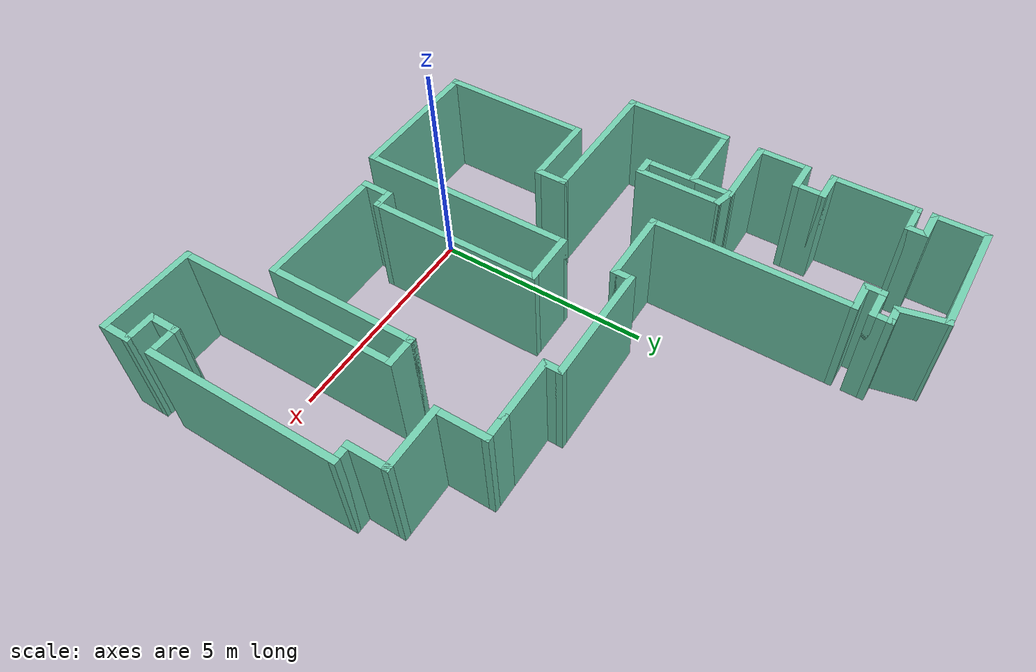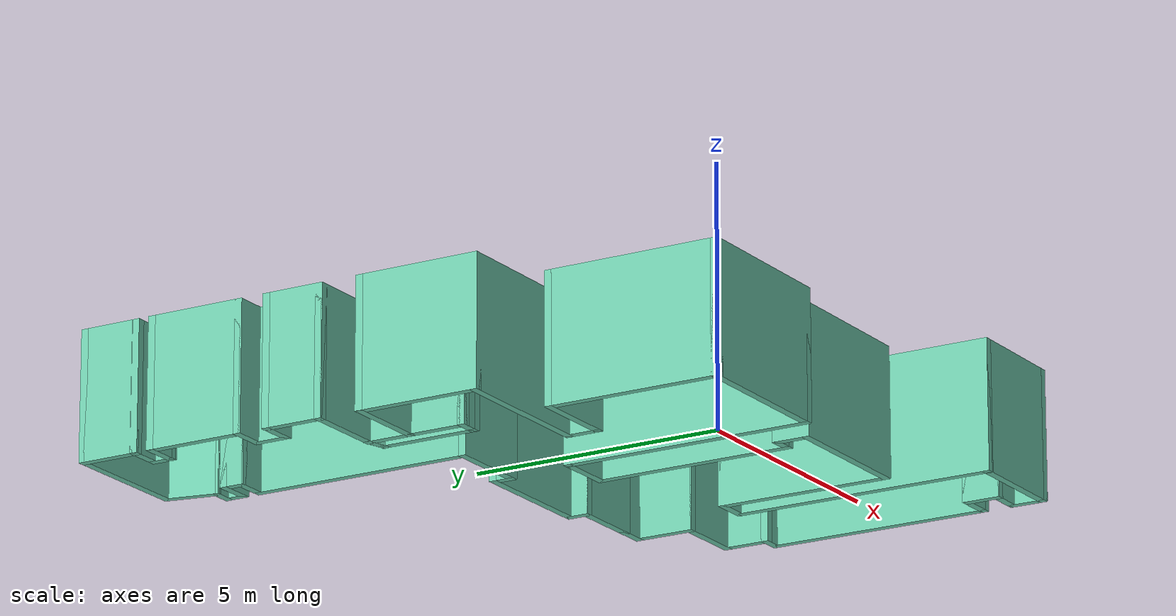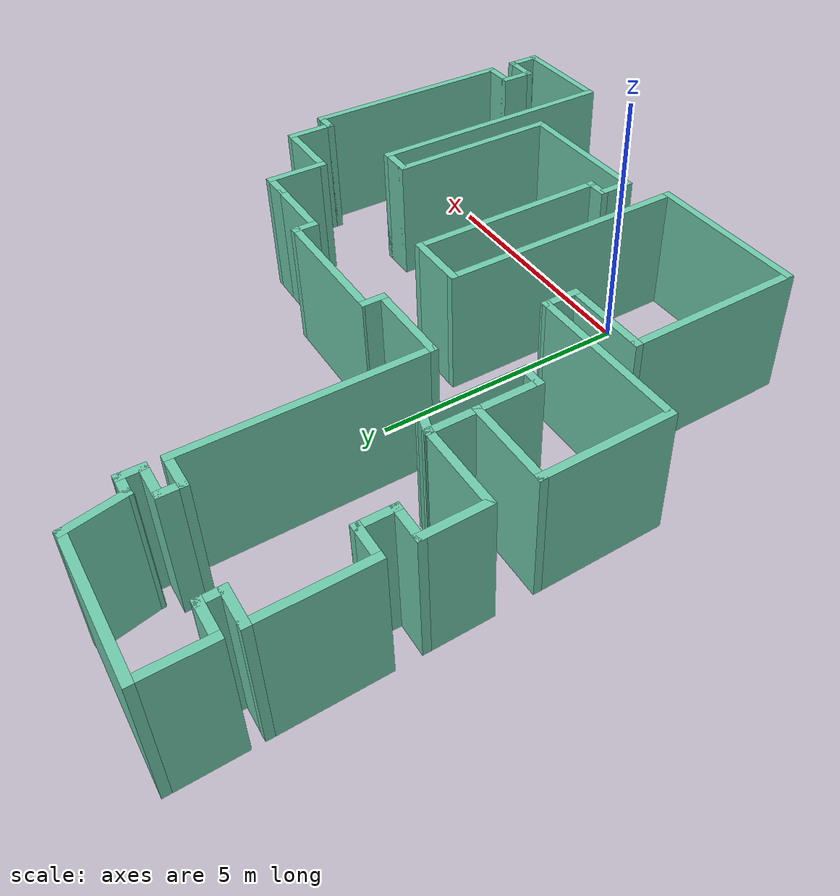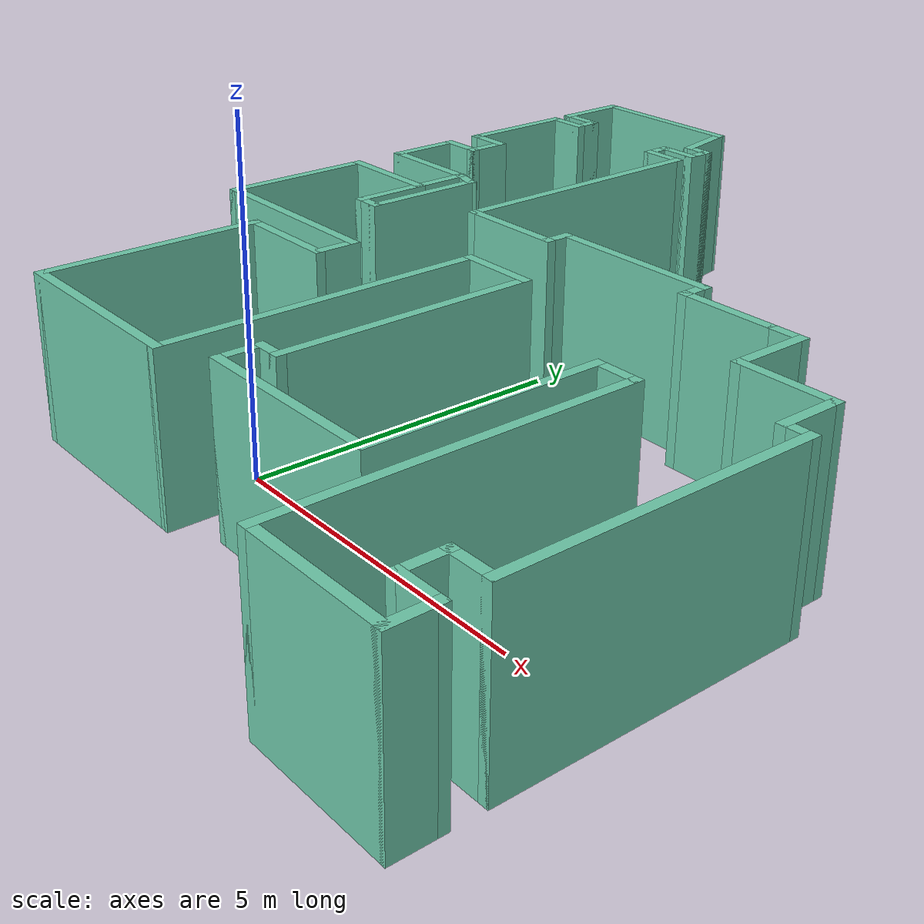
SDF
<?xml version='1.0'?>
<sdf version='1.6'>
  <model name='map_79'>
    <pose frame=''>1.24777 3.87322 0 0 -0 0</pose>
    <link name='Wall_0'>
      <collision name='Wall_0_Collision'>
        <geometry>
          <box>
            <size>2.75 0.15 2.5</size>
          </box>
        </geometry>
        <pose frame=''>0 0 1.25 0 -0 0</pose>
      </collision>
      <visual name='Wall_0_Visual'>
        <pose frame=''>0 0 1.25 0 -0 0</pose>
        <geometry>
          <box>
            <size>2.75 0.15 2.5</size>
          </box>
        </geometry>
        <material>
          <script>
            <uri>file://media/materials/scripts/gazebo.material</uri>
            <name>Gazebo/Grey</name>
          </script>
          <ambient>0.435294 0.796078 0.67451 1</ambient>
        </material>
        <meta>
          <layer>0</layer>
        </meta>
      </visual>
      <pose frame=''>-4.15 6.74308 0 0 -0 3.14159</pose>
    </link>
    <link name='Wall_1'>
      <collision name='Wall_1_Collision'>
        <geometry>
          <box>
            <size>1.25 0.15 2.5</size>
          </box>
        </geometry>
        <pose frame=''>0 0 1.25 0 -0 0</pose>
      </collision>
      <visual name='Wall_1_Visual'>
        <pose frame=''>0 0 1.25 0 -0 0</pose>
        <geometry>
          <box>
            <size>1.25 0.15 2.5</size>
          </box>
        </geometry>
        <material>
          <script>
            <uri>file://media/materials/scripts/gazebo.material</uri>
            <name>Gazebo/Grey</name>
          </script>
          <ambient>0.435294 0.796078 0.67451 1</ambient>
        </material>
        <meta>
          <layer>0</layer>
        </meta>
      </visual>
      <pose frame=''>-5.45 6.19308 0 0 -0 -1.5708</pose>
    </link>
    <link name='Wall_10'>
      <collision name='Wall_10_Collision'>
        <geometry>
          <box>
            <size>1.75 0.15 2.5</size>
          </box>
        </geometry>
        <pose frame=''>0 0 1.25 0 -0 0</pose>
      </collision>
      <visual name='Wall_10_Visual'>
        <pose frame=''>0 0 1.25 0 -0 0</pose>
        <geometry>
          <box>
            <size>1.75 0.15 2.5</size>
          </box>
        </geometry>
        <material>
          <script>
            <uri>file://media/materials/scripts/gazebo.material</uri>
            <name>Gazebo/Grey</name>
          </script>
          <ambient>0.435294 0.796078 0.67451 1</ambient>
        </material>
        <meta>
          <layer>0</layer>
        </meta>
      </visual>
      <pose frame=''>-4.65 1.74308 0 0 -0 0</pose>
    </link>
    <link name='Wall_11'>
      <collision name='Wall_11_Collision'>
        <geometry>
          <box>
            <size>1 0.15 2.5</size>
          </box>
        </geometry>
        <pose frame=''>0 0 1.25 0 -0 0</pose>
      </collision>
      <visual name='Wall_11_Visual'>
        <pose frame=''>0 0 1.25 0 -0 0</pose>
        <geometry>
          <box>
            <size>1 0.15 2.5</size>
          </box>
        </geometry>
        <material>
          <script>
            <uri>file://media/materials/scripts/gazebo.material</uri>
            <name>Gazebo/Grey</name>
          </script>
          <ambient>0.435294 0.796078 0.67451 1</ambient>
        </material>
        <meta>
          <layer>0</layer>
        </meta>
      </visual>
      <pose frame=''>-3.85 1.31808 0 0 -0 -1.5708</pose>
    </link>
    <link name='Wall_12'>
      <collision name='Wall_12_Collision'>
        <geometry>
          <box>
            <size>1.75 0.15 2.5</size>
          </box>
        </geometry>
        <pose frame=''>0 0 1.25 0 -0 0</pose>
      </collision>
      <visual name='Wall_12_Visual'>
        <pose frame=''>0 0 1.25 0 -0 0</pose>
        <geometry>
          <box>
            <size>1.75 0.15 2.5</size>
          </box>
        </geometry>
        <material>
          <script>
            <uri>file://media/materials/scripts/gazebo.material</uri>
            <name>Gazebo/Grey</name>
          </script>
          <ambient>0.435294 0.796078 0.67451 1</ambient>
        </material>
        <meta>
          <layer>0</layer>
        </meta>
      </visual>
      <pose frame=''>-4.65 0.893079 0 0 -0 3.14159</pose>
    </link>
    <link name='Wall_13'>
      <collision name='Wall_13_Collision'>
        <geometry>
          <box>
            <size>2.5 0.15 2.5</size>
          </box>
        </geometry>
        <pose frame=''>0 0 1.25 0 -0 0</pose>
      </collision>
      <visual name='Wall_13_Visual'>
        <pose frame=''>0 0 1.25 0 -0 0</pose>
        <geometry>
          <box>
            <size>2.5 0.15 2.5</size>
          </box>
        </geometry>
        <material>
          <script>
            <uri>file://media/materials/scripts/gazebo.material</uri>
            <name>Gazebo/Grey</name>
          </script>
          <ambient>0.435294 0.796078 0.67451 1</ambient>
        </material>
        <meta>
          <layer>0</layer>
        </meta>
      </visual>
      <pose frame=''>-5.45 -0.281921 0 0 -0 -1.5708</pose>
    </link>
    <link name='Wall_14'>
      <collision name='Wall_14_Collision'>
        <geometry>
          <box>
            <size>3.25 0.15 2.5</size>
          </box>
        </geometry>
        <pose frame=''>0 0 1.25 0 -0 0</pose>
      </collision>
      <visual name='Wall_14_Visual'>
        <pose frame=''>0 0 1.25 0 -0 0</pose>
        <geometry>
          <box>
            <size>3.25 0.15 2.5</size>
          </box>
        </geometry>
        <material>
          <script>
            <uri>file://media/materials/scripts/gazebo.material</uri>
            <name>Gazebo/Grey</name>
          </script>
          <ambient>0.435294 0.796078 0.67451 1</ambient>
        </material>
        <meta>
          <layer>0</layer>
        </meta>
      </visual>
      <pose frame=''>-3.9 -1.45692 0 0 -0 0</pose>
    </link>
    <link name='Wall_15'>
      <collision name='Wall_15_Collision'>
        <geometry>
          <box>
            <size>0.75 0.15 2.5</size>
          </box>
        </geometry>
        <pose frame=''>0 0 1.25 0 -0 0</pose>
      </collision>
      <visual name='Wall_15_Visual'>
        <pose frame=''>0 0 1.25 0 -0 0</pose>
        <geometry>
          <box>
            <size>0.75 0.15 2.5</size>
          </box>
        </geometry>
        <material>
          <script>
            <uri>file://media/materials/scripts/gazebo.material</uri>
            <name>Gazebo/Grey</name>
          </script>
          <ambient>0.435294 0.796078 0.67451 1</ambient>
        </material>
        <meta>
          <layer>0</layer>
        </meta>
      </visual>
      <pose frame=''>-2.35 -1.75692 0 0 -0 -1.5708</pose>
    </link>
    <link name='Wall_16'>
      <collision name='Wall_16_Collision'>
        <geometry>
          <box>
            <size>1.75 0.15 2.5</size>
          </box>
        </geometry>
        <pose frame=''>0 0 1.25 0 -0 0</pose>
      </collision>
      <visual name='Wall_16_Visual'>
        <pose frame=''>0 0 1.25 0 -0 0</pose>
        <geometry>
          <box>
            <size>1.75 0.15 2.5</size>
          </box>
        </geometry>
        <material>
          <script>
            <uri>file://media/materials/scripts/gazebo.material</uri>
            <name>Gazebo/Grey</name>
          </script>
          <ambient>0.435294 0.796078 0.67451 1</ambient>
        </material>
        <meta>
          <layer>0</layer>
        </meta>
      </visual>
      <pose frame=''>-3.15 -2.05692 0 0 -0 3.14159</pose>
    </link>
    <link name='Wall_17'>
      <collision name='Wall_17_Collision'>
        <geometry>
          <box>
            <size>3.5 0.15 2.5</size>
          </box>
        </geometry>
        <pose frame=''>0 0 1.25 0 -0 0</pose>
      </collision>
      <visual name='Wall_17_Visual'>
        <pose frame=''>0 0 1.25 0 -0 0</pose>
        <geometry>
          <box>
            <size>3.5 0.15 2.5</size>
          </box>
        </geometry>
        <material>
          <script>
            <uri>file://media/materials/scripts/gazebo.material</uri>
            <name>Gazebo/Grey</name>
          </script>
          <ambient>0.435294 0.796078 0.67451 1</ambient>
        </material>
        <meta>
          <layer>0</layer>
        </meta>
      </visual>
      <pose frame=''>-3.95 -3.73192 0 0 -0 -1.5708</pose>
    </link>
    <link name='Wall_18'>
      <collision name='Wall_18_Collision'>
        <geometry>
          <box>
            <size>3.25 0.15 2.5</size>
          </box>
        </geometry>
        <pose frame=''>0 0 1.25 0 -0 0</pose>
      </collision>
      <visual name='Wall_18_Visual'>
        <pose frame=''>0 0 1.25 0 -0 0</pose>
        <geometry>
          <box>
            <size>3.25 0.15 2.5</size>
          </box>
        </geometry>
        <material>
          <script>
            <uri>file://media/materials/scripts/gazebo.material</uri>
            <name>Gazebo/Grey</name>
          </script>
          <ambient>0.435294 0.796078 0.67451 1</ambient>
        </material>
        <meta>
          <layer>0</layer>
        </meta>
      </visual>
      <pose frame=''>-2.4 -5.40692 0 0 -0 0</pose>
    </link>
    <link name='Wall_19'>
      <collision name='Wall_19_Collision'>
        <geometry>
          <box>
            <size>5 0.15 2.5</size>
          </box>
        </geometry>
        <pose frame=''>0 0 1.25 0 -0 0</pose>
      </collision>
      <visual name='Wall_19_Visual'>
        <pose frame=''>0 0 1.25 0 -0 0</pose>
        <geometry>
          <box>
            <size>5 0.15 2.5</size>
          </box>
        </geometry>
        <material>
          <script>
            <uri>file://media/materials/scripts/gazebo.material</uri>
            <name>Gazebo/Grey</name>
          </script>
          <ambient>0.435294 0.796078 0.67451 1</ambient>
        </material>
        <meta>
          <layer>0</layer>
        </meta>
      </visual>
      <pose frame=''>-0.85 -2.98192 0 0 -0 1.5708</pose>
    </link>
    <link name='Wall_2'>
      <collision name='Wall_2_Collision'>
        <geometry>
          <box>
            <size>0.75 0.15 2.5</size>
          </box>
        </geometry>
        <pose frame=''>0 0 1.25 0 -0 0</pose>
      </collision>
      <visual name='Wall_2_Visual'>
        <pose frame=''>0 0 1.25 0 -0 0</pose>
        <geometry>
          <box>
            <size>0.75 0.15 2.5</size>
          </box>
        </geometry>
        <material>
          <script>
            <uri>file://media/materials/scripts/gazebo.material</uri>
            <name>Gazebo/Grey</name>
          </script>
          <ambient>0.435294 0.796078 0.67451 1</ambient>
        </material>
        <meta>
          <layer>0</layer>
        </meta>
      </visual>
      <pose frame=''>-5.15 5.64308 0 0 -0 0</pose>
    </link>
    <link name='Wall_20'>
      <collision name='Wall_20_Collision'>
        <geometry>
          <box>
            <size>1.25 0.15 2.5</size>
          </box>
        </geometry>
        <pose frame=''>0 0 1.25 0 -0 0</pose>
      </collision>
      <visual name='Wall_20_Visual'>
        <pose frame=''>0 0 1.25 0 -0 0</pose>
        <geometry>
          <box>
            <size>1.25 0.15 2.5</size>
          </box>
        </geometry>
        <material>
          <script>
            <uri>file://media/materials/scripts/gazebo.material</uri>
            <name>Gazebo/Grey</name>
          </script>
          <ambient>0.435294 0.796078 0.67451 1</ambient>
        </material>
        <meta>
          <layer>0</layer>
        </meta>
      </visual>
      <pose frame=''>-0.3 -0.556921 0 0 -0 0</pose>
    </link>
    <link name='Wall_21'>
      <collision name='Wall_21_Collision'>
        <geometry>
          <box>
            <size>4 0.15 2.5</size>
          </box>
        </geometry>
        <pose frame=''>0 0 1.25 0 -0 0</pose>
      </collision>
      <visual name='Wall_21_Visual'>
        <pose frame=''>0 0 1.25 0 -0 0</pose>
        <geometry>
          <box>
            <size>4 0.15 2.5</size>
          </box>
        </geometry>
        <material>
          <script>
            <uri>file://media/materials/scripts/gazebo.material</uri>
            <name>Gazebo/Grey</name>
          </script>
          <ambient>0.435294 0.796078 0.67451 1</ambient>
        </material>
        <meta>
          <layer>0</layer>
        </meta>
      </visual>
      <pose frame=''>0.25 -2.48192 0 0 -0 -1.5708</pose>
    </link>
    <link name='Wall_22'>
      <collision name='Wall_22_Collision'>
        <geometry>
          <box>
            <size>0.5 0.15 2.5</size>
          </box>
        </geometry>
        <pose frame=''>0 0 1.25 0 -0 0</pose>
      </collision>
      <visual name='Wall_22_Visual'>
        <pose frame=''>0 0 1.25 0 -0 0</pose>
        <geometry>
          <box>
            <size>0.5 0.15 2.5</size>
          </box>
        </geometry>
        <material>
          <script>
            <uri>file://media/materials/scripts/gazebo.material</uri>
            <name>Gazebo/Grey</name>
          </script>
          <ambient>0.435294 0.796078 0.67451 1</ambient>
        </material>
        <meta>
          <layer>0</layer>
        </meta>
      </visual>
      <pose frame=''>0.075 -4.40692 0 0 -0 3.14159</pose>
    </link>
    <link name='Wall_23'>
      <collision name='Wall_23_Collision'>
        <geometry>
          <box>
            <size>0.75 0.15 2.5</size>
          </box>
        </geometry>
        <pose frame=''>0 0 1.25 0 -0 0</pose>
      </collision>
      <visual name='Wall_23_Visual'>
        <pose frame=''>0 0 1.25 0 -0 0</pose>
        <geometry>
          <box>
            <size>0.75 0.15 2.5</size>
          </box>
        </geometry>
        <material>
          <script>
            <uri>file://media/materials/scripts/gazebo.material</uri>
            <name>Gazebo/Grey</name>
          </script>
          <ambient>0.435294 0.796078 0.67451 1</ambient>
        </material>
        <meta>
          <layer>0</layer>
        </meta>
      </visual>
      <pose frame=''>-0.1 -4.70692 0 0 -0 -1.5708</pose>
    </link>
    <link name='Wall_24'>
      <collision name='Wall_24_Collision'>
        <geometry>
          <box>
            <size>3 0.15 2.5</size>
          </box>
        </geometry>
        <pose frame=''>0 0 1.25 0 -0 0</pose>
      </collision>
      <visual name='Wall_24_Visual'>
        <pose frame=''>0 0 1.25 0 -0 0</pose>
        <geometry>
          <box>
            <size>3 0.15 2.5</size>
          </box>
        </geometry>
        <material>
          <script>
            <uri>file://media/materials/scripts/gazebo.material</uri>
            <name>Gazebo/Grey</name>
          </script>
          <ambient>0.435294 0.796078 0.67451 1</ambient>
        </material>
        <meta>
          <layer>0</layer>
        </meta>
      </visual>
      <pose frame=''>1.325 -5.00692 0 0 -0 0</pose>
    </link>
    <link name='Wall_25'>
      <collision name='Wall_25_Collision'>
        <geometry>
          <box>
            <size>3.5 0.15 2.5</size>
          </box>
        </geometry>
        <pose frame=''>0 0 1.25 0 -0 0</pose>
      </collision>
      <visual name='Wall_25_Visual'>
        <pose frame=''>0 0 1.25 0 -0 0</pose>
        <geometry>
          <box>
            <size>3.5 0.15 2.5</size>
          </box>
        </geometry>
        <material>
          <script>
            <uri>file://media/materials/scripts/gazebo.material</uri>
            <name>Gazebo/Grey</name>
          </script>
          <ambient>0.435294 0.796078 0.67451 1</ambient>
        </material>
        <meta>
          <layer>0</layer>
        </meta>
      </visual>
      <pose frame=''>2.75 -3.33192 0 0 -0 1.5708</pose>
    </link>
    <link name='Wall_26'>
      <collision name='Wall_26_Collision'>
        <geometry>
          <box>
            <size>0.75 0.15 2.5</size>
          </box>
        </geometry>
        <pose frame=''>0 0 1.25 0 -0 0</pose>
      </collision>
      <visual name='Wall_26_Visual'>
        <pose frame=''>0 0 1.25 0 -0 0</pose>
        <geometry>
          <box>
            <size>0.75 0.15 2.5</size>
          </box>
        </geometry>
        <material>
          <script>
            <uri>file://media/materials/scripts/gazebo.material</uri>
            <name>Gazebo/Grey</name>
          </script>
          <ambient>0.435294 0.796078 0.67451 1</ambient>
        </material>
        <meta>
          <layer>0</layer>
        </meta>
      </visual>
      <pose frame=''>3.05 -1.65692 0 0 -0 0</pose>
    </link>
    <link name='Wall_27'>
      <collision name='Wall_27_Collision'>
        <geometry>
          <box>
            <size>5.25 0.15 2.5</size>
          </box>
        </geometry>
        <pose frame=''>0 0 1.25 0 -0 0</pose>
      </collision>
      <visual name='Wall_27_Visual'>
        <pose frame=''>0 0 1.25 0 -0 0</pose>
        <geometry>
          <box>
            <size>5.25 0.15 2.5</size>
          </box>
        </geometry>
        <material>
          <script>
            <uri>file://media/materials/scripts/gazebo.material</uri>
            <name>Gazebo/Grey</name>
          </script>
          <ambient>0.435294 0.796078 0.67451 1</ambient>
        </material>
        <meta>
          <layer>0</layer>
        </meta>
      </visual>
      <pose frame=''>3.35 -4.20692 0 0 -0 -1.5708</pose>
    </link>
    <link name='Wall_3'>
      <collision name='Wall_3_Collision'>
        <geometry>
          <box>
            <size>0.5 0.15 2.5</size>
          </box>
        </geometry>
        <pose frame=''>0 0 1.25 0 -0 0</pose>
      </collision>
      <visual name='Wall_3_Visual'>
        <pose frame=''>0 0 1.25 0 -0 0</pose>
        <geometry>
          <box>
            <size>0.5 0.15 2.5</size>
          </box>
        </geometry>
        <material>
          <script>
            <uri>file://media/materials/scripts/gazebo.material</uri>
            <name>Gazebo/Grey</name>
          </script>
          <ambient>0.435294 0.796078 0.67451 1</ambient>
        </material>
        <meta>
          <layer>0</layer>
        </meta>
      </visual>
      <pose frame=''>-4.85 5.46808 0 0 -0 -1.5708</pose>
    </link>
    <link name='Wall_39'>
      <collision name='Wall_39_Collision'>
        <geometry>
          <box>
            <size>1.5 0.15 2.5</size>
          </box>
        </geometry>
        <pose frame=''>0 0 1.25 0 -0 0</pose>
      </collision>
      <visual name='Wall_39_Visual'>
        <pose frame=''>0 0 1.25 0 -0 0</pose>
        <geometry>
          <box>
            <size>1.5 0.15 2.5</size>
          </box>
        </geometry>
        <material>
          <script>
            <uri>file://media/materials/scripts/gazebo.material</uri>
            <name>Gazebo/Grey</name>
          </script>
          <ambient>0.435294 0.796078 0.67451 1</ambient>
        </material>
        <meta>
          <layer>0</layer>
        </meta>
      </visual>
      <pose frame=''>2.575 0.743079 0 0 -0 3.14159</pose>
    </link>
    <link name='Wall_4'>
      <collision name='Wall_4_Collision'>
        <geometry>
          <box>
            <size>0.75 0.15 2.5</size>
          </box>
        </geometry>
        <pose frame=''>0 0 1.25 0 -0 0</pose>
      </collision>
      <visual name='Wall_4_Visual'>
        <pose frame=''>0 0 1.25 0 -0 0</pose>
        <geometry>
          <box>
            <size>0.75 0.15 2.5</size>
          </box>
        </geometry>
        <material>
          <script>
            <uri>file://media/materials/scripts/gazebo.material</uri>
            <name>Gazebo/Grey</name>
          </script>
          <ambient>0.435294 0.796078 0.67451 1</ambient>
        </material>
        <meta>
          <layer>0</layer>
        </meta>
      </visual>
      <pose frame=''>-5.15 5.29308 0 0 -0 3.14159</pose>
    </link>
    <link name='Wall_40'>
      <collision name='Wall_40_Collision'>
        <geometry>
          <box>
            <size>0.5 0.15 2.5</size>
          </box>
        </geometry>
        <pose frame=''>0 0 1.25 0 -0 0</pose>
      </collision>
      <visual name='Wall_40_Visual'>
        <pose frame=''>0 0 1.25 0 -0 0</pose>
        <geometry>
          <box>
            <size>0.5 0.15 2.5</size>
          </box>
        </geometry>
        <material>
          <script>
            <uri>file://media/materials/scripts/gazebo.material</uri>
            <name>Gazebo/Grey</name>
          </script>
          <ambient>0.435294 0.796078 0.67451 1</ambient>
        </material>
        <meta>
          <layer>0</layer>
        </meta>
      </visual>
      <pose frame=''>1.9 0.918079 0 0 -0 1.5708</pose>
    </link>
    <link name='Wall_41'>
      <collision name='Wall_41_Collision'>
        <geometry>
          <box>
            <size>2.75 0.15 2.5</size>
          </box>
        </geometry>
        <pose frame=''>0 0 1.25 0 -0 0</pose>
      </collision>
      <visual name='Wall_41_Visual'>
        <pose frame=''>0 0 1.25 0 -0 0</pose>
        <geometry>
          <box>
            <size>2.75 0.15 2.5</size>
          </box>
        </geometry>
        <material>
          <script>
            <uri>file://media/materials/scripts/gazebo.material</uri>
            <name>Gazebo/Grey</name>
          </script>
          <ambient>0.435294 0.796078 0.67451 1</ambient>
        </material>
        <meta>
          <layer>0</layer>
        </meta>
      </visual>
      <pose frame=''>0.6 1.09308 0 0 -0 3.14159</pose>
    </link>
    <link name='Wall_49'>
      <collision name='Wall_49_Collision'>
        <geometry>
          <box>
            <size>2.25 0.15 2.5</size>
          </box>
        </geometry>
        <pose frame=''>0 0 1.25 0 -0 0</pose>
      </collision>
      <visual name='Wall_49_Visual'>
        <pose frame=''>0 0 1.25 0 -0 0</pose>
        <geometry>
          <box>
            <size>2.25 0.15 2.5</size>
          </box>
        </geometry>
        <material>
          <script>
            <uri>file://media/materials/scripts/gazebo.material</uri>
            <name>Gazebo/Grey</name>
          </script>
          <ambient>0.435294 0.796078 0.67451 1</ambient>
        </material>
        <meta>
          <layer>0</layer>
        </meta>
      </visual>
      <pose frame=''>4.4 -6.75692 0 0 -0 0</pose>
    </link>
    <link name='Wall_5'>
      <collision name='Wall_5_Collision'>
        <geometry>
          <box>
            <size>2 0.15 2.5</size>
          </box>
        </geometry>
        <pose frame=''>0 0 1.25 0 -0 0</pose>
      </collision>
      <visual name='Wall_5_Visual'>
        <pose frame=''>0 0 1.25 0 -0 0</pose>
        <geometry>
          <box>
            <size>2 0.15 2.5</size>
          </box>
        </geometry>
        <material>
          <script>
            <uri>file://media/materials/scripts/gazebo.material</uri>
            <name>Gazebo/Grey</name>
          </script>
          <ambient>0.435294 0.796078 0.67451 1</ambient>
        </material>
        <meta>
          <layer>0</layer>
        </meta>
      </visual>
      <pose frame=''>-5.45 4.36808 0 0 -0 -1.5708</pose>
    </link>
    <link name='Wall_50'>
      <collision name='Wall_50_Collision'>
        <geometry>
          <box>
            <size>0.75 0.15 2.5</size>
          </box>
        </geometry>
        <pose frame=''>0 0 1.25 0 -0 0</pose>
      </collision>
      <visual name='Wall_50_Visual'>
        <pose frame=''>0 0 1.25 0 -0 0</pose>
        <geometry>
          <box>
            <size>0.75 0.15 2.5</size>
          </box>
        </geometry>
        <material>
          <script>
            <uri>file://media/materials/scripts/gazebo.material</uri>
            <name>Gazebo/Grey</name>
          </script>
          <ambient>0.435294 0.796078 0.67451 1</ambient>
        </material>
        <meta>
          <layer>0</layer>
        </meta>
      </visual>
      <pose frame=''>5.45 -6.45692 0 0 -0 1.5708</pose>
    </link>
    <link name='Wall_51'>
      <collision name='Wall_51_Collision'>
        <geometry>
          <box>
            <size>0.75 0.15 2.5</size>
          </box>
        </geometry>
        <pose frame=''>0 0 1.25 0 -0 0</pose>
      </collision>
      <visual name='Wall_51_Visual'>
        <pose frame=''>0 0 1.25 0 -0 0</pose>
        <geometry>
          <box>
            <size>0.75 0.15 2.5</size>
          </box>
        </geometry>
        <material>
          <script>
            <uri>file://media/materials/scripts/gazebo.material</uri>
            <name>Gazebo/Grey</name>
          </script>
          <ambient>0.435294 0.796078 0.67451 1</ambient>
        </material>
        <meta>
          <layer>0</layer>
        </meta>
      </visual>
      <pose frame=''>5.15 -6.15692 0 0 -0 3.14159</pose>
    </link>
    <link name='Wall_52'>
      <collision name='Wall_52_Collision'>
        <geometry>
          <box>
            <size>0.75 0.15 2.5</size>
          </box>
        </geometry>
        <pose frame=''>0 0 1.25 0 -0 0</pose>
      </collision>
      <visual name='Wall_52_Visual'>
        <pose frame=''>0 0 1.25 0 -0 0</pose>
        <geometry>
          <box>
            <size>0.75 0.15 2.5</size>
          </box>
        </geometry>
        <material>
          <script>
            <uri>file://media/materials/scripts/gazebo.material</uri>
            <name>Gazebo/Grey</name>
          </script>
          <ambient>0.435294 0.796078 0.67451 1</ambient>
        </material>
        <meta>
          <layer>0</layer>
        </meta>
      </visual>
      <pose frame=''>4.85 -5.85692 0 0 -0 1.5708</pose>
    </link>
    <link name='Wall_53'>
      <collision name='Wall_53_Collision'>
        <geometry>
          <box>
            <size>0.75 0.15 2.5</size>
          </box>
        </geometry>
        <pose frame=''>0 0 1.25 0 -0 0</pose>
      </collision>
      <visual name='Wall_53_Visual'>
        <pose frame=''>0 0 1.25 0 -0 0</pose>
        <geometry>
          <box>
            <size>0.75 0.15 2.5</size>
          </box>
        </geometry>
        <material>
          <script>
            <uri>file://media/materials/scripts/gazebo.material</uri>
            <name>Gazebo/Grey</name>
          </script>
          <ambient>0.435294 0.796078 0.67451 1</ambient>
        </material>
        <meta>
          <layer>0</layer>
        </meta>
      </visual>
      <pose frame=''>5.15 -5.55692 0 0 -0 0</pose>
    </link>
    <link name='Wall_54'>
      <collision name='Wall_54_Collision'>
        <geometry>
          <box>
            <size>4.5 0.15 2.5</size>
          </box>
        </geometry>
        <pose frame=''>0 0 1.25 0 -0 0</pose>
      </collision>
      <visual name='Wall_54_Visual'>
        <pose frame=''>0 0 1.25 0 -0 0</pose>
        <geometry>
          <box>
            <size>4.5 0.15 2.5</size>
          </box>
        </geometry>
        <material>
          <script>
            <uri>file://media/materials/scripts/gazebo.material</uri>
            <name>Gazebo/Grey</name>
          </script>
          <ambient>0.435294 0.796078 0.67451 1</ambient>
        </material>
        <meta>
          <layer>0</layer>
        </meta>
      </visual>
      <pose frame=''>5.45 -3.38192 0 0 -0 1.5708</pose>
    </link>
    <link name='Wall_55'>
      <collision name='Wall_55_Collision'>
        <geometry>
          <box>
            <size>0.5 0.15 2.5</size>
          </box>
        </geometry>
        <pose frame=''>0 0 1.25 0 -0 0</pose>
      </collision>
      <visual name='Wall_55_Visual'>
        <pose frame=''>0 0 1.25 0 -0 0</pose>
        <geometry>
          <box>
            <size>0.5 0.15 2.5</size>
          </box>
        </geometry>
        <material>
          <script>
            <uri>file://media/materials/scripts/gazebo.material</uri>
            <name>Gazebo/Grey</name>
          </script>
          <ambient>0.435294 0.796078 0.67451 1</ambient>
        </material>
        <meta>
          <layer>0</layer>
        </meta>
      </visual>
      <pose frame=''>5.275 -1.20692 0 0 -0 3.14159</pose>
    </link>
    <link name='Wall_6'>
      <collision name='Wall_6_Collision'>
        <geometry>
          <box>
            <size>0.75 0.15 2.5</size>
          </box>
        </geometry>
        <pose frame=''>0 0 1.25 0 -0 0</pose>
      </collision>
      <visual name='Wall_6_Visual'>
        <pose frame=''>0 0 1.25 0 -0 0</pose>
        <geometry>
          <box>
            <size>0.75 0.15 2.5</size>
          </box>
        </geometry>
        <material>
          <script>
            <uri>file://media/materials/scripts/gazebo.material</uri>
            <name>Gazebo/Grey</name>
          </script>
          <ambient>0.435294 0.796078 0.67451 1</ambient>
        </material>
        <meta>
          <layer>0</layer>
        </meta>
      </visual>
      <pose frame=''>-5.15 3.44308 0 0 -0 0</pose>
    </link>
    <link name='Wall_63'>
      <collision name='Wall_63_Collision'>
        <geometry>
          <box>
            <size>0.5 0.15 2.5</size>
          </box>
        </geometry>
        <pose frame=''>0 0 1.25 0 -0 0</pose>
      </collision>
      <visual name='Wall_63_Visual'>
        <pose frame=''>0 0 1.25 0 -0 0</pose>
        <geometry>
          <box>
            <size>0.5 0.15 2.5</size>
          </box>
        </geometry>
        <material>
          <script>
            <uri>file://media/materials/scripts/gazebo.material</uri>
            <name>Gazebo/Grey</name>
          </script>
          <ambient>0.435294 0.796078 0.67451 1</ambient>
        </material>
        <meta>
          <layer>0</layer>
        </meta>
      </visual>
      <pose frame=''>-0.7 0.918079 0 0 -0 -1.5708</pose>
    </link>
    <link name='Wall_64'>
      <collision name='Wall_64_Collision'>
        <geometry>
          <box>
            <size>1.75 0.15 2.5</size>
          </box>
        </geometry>
        <pose frame=''>0 0 1.25 0 -0 0</pose>
      </collision>
      <visual name='Wall_64_Visual'>
        <pose frame=''>0 0 1.25 0 -0 0</pose>
        <geometry>
          <box>
            <size>1.75 0.15 2.5</size>
          </box>
        </geometry>
        <material>
          <script>
            <uri>file://media/materials/scripts/gazebo.material</uri>
            <name>Gazebo/Grey</name>
          </script>
          <ambient>0.435294 0.796078 0.67451 1</ambient>
        </material>
        <meta>
          <layer>0</layer>
        </meta>
      </visual>
      <pose frame=''>-1.5 0.743079 0 0 -0 3.14159</pose>
    </link>
    <link name='Wall_65'>
      <collision name='Wall_65_Collision'>
        <geometry>
          <box>
            <size>4.5 0.15 2.5</size>
          </box>
        </geometry>
        <pose frame=''>0 0 1.25 0 -0 0</pose>
      </collision>
      <visual name='Wall_65_Visual'>
        <pose frame=''>0 0 1.25 0 -0 0</pose>
        <geometry>
          <box>
            <size>4.5 0.15 2.5</size>
          </box>
        </geometry>
        <material>
          <script>
            <uri>file://media/materials/scripts/gazebo.material</uri>
            <name>Gazebo/Grey</name>
          </script>
          <ambient>0.435294 0.796078 0.67451 1</ambient>
        </material>
        <meta>
          <layer>0</layer>
        </meta>
      </visual>
      <pose frame=''>-2.3 2.91808 0 0 -0 1.5708</pose>
    </link>
    <link name='Wall_66'>
      <collision name='Wall_66_Collision'>
        <geometry>
          <box>
            <size>0.75 0.15 2.5</size>
          </box>
        </geometry>
        <pose frame=''>0 0 1.25 0 -0 0</pose>
      </collision>
      <visual name='Wall_66_Visual'>
        <pose frame=''>0 0 1.25 0 -0 0</pose>
        <geometry>
          <box>
            <size>0.75 0.15 2.5</size>
          </box>
        </geometry>
        <material>
          <script>
            <uri>file://media/materials/scripts/gazebo.material</uri>
            <name>Gazebo/Grey</name>
          </script>
          <ambient>0.435294 0.796078 0.67451 1</ambient>
        </material>
        <meta>
          <layer>0</layer>
        </meta>
      </visual>
      <pose frame=''>-2.6 5.09308 0 0 -0 3.14159</pose>
    </link>
    <link name='Wall_67'>
      <collision name='Wall_67_Collision'>
        <geometry>
          <box>
            <size>0.5 0.15 2.5</size>
          </box>
        </geometry>
        <pose frame=''>0 0 1.25 0 -0 0</pose>
      </collision>
      <visual name='Wall_67_Visual'>
        <pose frame=''>0 0 1.25 0 -0 0</pose>
        <geometry>
          <box>
            <size>0.5 0.15 2.5</size>
          </box>
        </geometry>
        <material>
          <script>
            <uri>file://media/materials/scripts/gazebo.material</uri>
            <name>Gazebo/Grey</name>
          </script>
          <ambient>0.435294 0.796078 0.67451 1</ambient>
        </material>
        <meta>
          <layer>0</layer>
        </meta>
      </visual>
      <pose frame=''>-2.9 5.26808 0 0 -0 1.5708</pose>
    </link>
    <link name='Wall_68'>
      <collision name='Wall_68_Collision'>
        <geometry>
          <box>
            <size>0.75 0.15 2.5</size>
          </box>
        </geometry>
        <pose frame=''>0 0 1.25 0 -0 0</pose>
      </collision>
      <visual name='Wall_68_Visual'>
        <pose frame=''>0 0 1.25 0 -0 0</pose>
        <geometry>
          <box>
            <size>0.75 0.15 2.5</size>
          </box>
        </geometry>
        <material>
          <script>
            <uri>file://media/materials/scripts/gazebo.material</uri>
            <name>Gazebo/Grey</name>
          </script>
          <ambient>0.435294 0.796078 0.67451 1</ambient>
        </material>
        <meta>
          <layer>0</layer>
        </meta>
      </visual>
      <pose frame=''>-2.6 5.44308 0 0 -0 0</pose>
    </link>
    <link name='Wall_69'>
      <collision name='Wall_69_Collision'>
        <geometry>
          <box>
            <size>0.5 0.15 2.5</size>
          </box>
        </geometry>
        <pose frame=''>0 0 1.25 0 -0 0</pose>
      </collision>
      <visual name='Wall_69_Visual'>
        <pose frame=''>0 0 1.25 0 -0 0</pose>
        <geometry>
          <box>
            <size>0.5 0.15 2.5</size>
          </box>
        </geometry>
        <material>
          <script>
            <uri>file://media/materials/scripts/gazebo.material</uri>
            <name>Gazebo/Grey</name>
          </script>
          <ambient>0.435294 0.796078 0.67451 1</ambient>
        </material>
        <meta>
          <layer>0</layer>
        </meta>
      </visual>
      <pose frame=''>-2.3 5.61808 0 0 -0 1.5708</pose>
    </link>
    <link name='Wall_7'>
      <collision name='Wall_7_Collision'>
        <geometry>
          <box>
            <size>0.75 0.15 2.5</size>
          </box>
        </geometry>
        <pose frame=''>0 0 1.25 0 -0 0</pose>
      </collision>
      <visual name='Wall_7_Visual'>
        <pose frame=''>0 0 1.25 0 -0 0</pose>
        <geometry>
          <box>
            <size>0.75 0.15 2.5</size>
          </box>
        </geometry>
        <material>
          <script>
            <uri>file://media/materials/scripts/gazebo.material</uri>
            <name>Gazebo/Grey</name>
          </script>
          <ambient>0.435294 0.796078 0.67451 1</ambient>
        </material>
        <meta>
          <layer>0</layer>
        </meta>
      </visual>
      <pose frame=''>-4.85 3.14308 0 0 -0 -1.5708</pose>
    </link>
    <link name='Wall_70'>
      <collision name='Wall_70_Collision'>
        <geometry>
          <box>
            <size>0.5 0.15 2.5</size>
          </box>
        </geometry>
        <pose frame=''>0 0 1.25 0 -0 0</pose>
      </collision>
      <visual name='Wall_70_Visual'>
        <pose frame=''>0 0 1.25 0 -0 0</pose>
        <geometry>
          <box>
            <size>0.5 0.15 2.5</size>
          </box>
        </geometry>
        <material>
          <script>
            <uri>file://media/materials/scripts/gazebo.material</uri>
            <name>Gazebo/Grey</name>
          </script>
          <ambient>0.435294 0.796078 0.67451 1</ambient>
        </material>
        <meta>
          <layer>0</layer>
        </meta>
      </visual>
      <pose frame=''>-2.475 5.79308 0 0 -0 3.14159</pose>
    </link>
    <link name='Wall_73'>
      <collision name='Wall_73_Collision'>
        <geometry>
          <box>
            <size>1.12082 0.15 2.5</size>
          </box>
        </geometry>
        <pose frame=''>0 0 1.25 0 -0 0</pose>
      </collision>
      <visual name='Wall_73_Visual'>
        <pose frame=''>0 0 1.25 0 -0 0</pose>
        <geometry>
          <box>
            <size>1.12082 0.15 2.5</size>
          </box>
        </geometry>
        <material>
          <script>
            <uri>file://media/materials/scripts/gazebo.material</uri>
            <name>Gazebo/Grey</name>
          </script>
          <ambient>0.435294 0.796078 0.67451 1</ambient>
        </material>
        <meta>
          <layer>0</layer>
        </meta>
      </visual>
      <pose frame=''>-2.75 6.26808 0 0 -0 -1.3633</pose>
    </link>
    <link name='Wall_75'>
      <collision name='Wall_75_Collision'>
        <geometry>
          <box>
            <size>1 0.15 2.5</size>
          </box>
        </geometry>
        <pose frame=''>0 0 1.25 0 -0 0</pose>
      </collision>
      <visual name='Wall_75_Visual'>
        <pose frame=''>0 0 1.25 0 -0 0</pose>
        <geometry>
          <box>
            <size>1 0.15 2.5</size>
          </box>
        </geometry>
        <material>
          <script>
            <uri>file://media/materials/scripts/gazebo.material</uri>
            <name>Gazebo/Grey</name>
          </script>
          <ambient>0.435294 0.796078 0.67451 1</ambient>
        </material>
        <meta>
          <layer>0</layer>
        </meta>
      </visual>
      <pose frame=''>5.1 -0.781921 0 0 -0 1.5708</pose>
    </link>
    <link name='Wall_76'>
      <collision name='Wall_76_Collision'>
        <geometry>
          <box>
            <size>1.5 0.15 2.5</size>
          </box>
        </geometry>
        <pose frame=''>0 0 1.25 0 -0 0</pose>
      </collision>
      <visual name='Wall_76_Visual'>
        <pose frame=''>0 0 1.25 0 -0 0</pose>
        <geometry>
          <box>
            <size>1.5 0.15 2.5</size>
          </box>
        </geometry>
        <material>
          <script>
            <uri>file://media/materials/scripts/gazebo.material</uri>
            <name>Gazebo/Grey</name>
          </script>
          <ambient>0.435294 0.796078 0.67451 1</ambient>
        </material>
        <meta>
          <layer>0</layer>
        </meta>
      </visual>
      <pose frame=''>4.425 -0.356921 0 0 -0 3.14159</pose>
    </link>
    <link name='Wall_77'>
      <collision name='Wall_77_Collision'>
        <geometry>
          <box>
            <size>1.25 0.15 2.5</size>
          </box>
        </geometry>
        <pose frame=''>0 0 1.25 0 -0 0</pose>
      </collision>
      <visual name='Wall_77_Visual'>
        <pose frame=''>0 0 1.25 0 -0 0</pose>
        <geometry>
          <box>
            <size>1.25 0.15 2.5</size>
          </box>
        </geometry>
        <material>
          <script>
            <uri>file://media/materials/scripts/gazebo.material</uri>
            <name>Gazebo/Grey</name>
          </script>
          <ambient>0.435294 0.796078 0.67451 1</ambient>
        </material>
        <meta>
          <layer>0</layer>
        </meta>
      </visual>
      <pose frame=''>3.75 0.193079 0 0 -0 1.5708</pose>
    </link>
    <link name='Wall_78'>
      <collision name='Wall_78_Collision'>
        <geometry>
          <box>
            <size>0.65 0.15 2.5</size>
          </box>
        </geometry>
        <pose frame=''>0 0 1.25 0 -0 0</pose>
      </collision>
      <visual name='Wall_78_Visual'>
        <pose frame=''>0 0 1.25 0 -0 0</pose>
        <geometry>
          <box>
            <size>0.65 0.15 2.5</size>
          </box>
        </geometry>
        <material>
          <script>
            <uri>file://media/materials/scripts/gazebo.material</uri>
            <name>Gazebo/Grey</name>
          </script>
          <ambient>0.435294 0.796078 0.67451 1</ambient>
        </material>
        <meta>
          <layer>0</layer>
        </meta>
      </visual>
      <pose frame=''>3.5 0.743079 0 0 -0 3.14159</pose>
    </link>
    <link name='Wall_8'>
      <collision name='Wall_8_Collision'>
        <geometry>
          <box>
            <size>0.75 0.15 2.5</size>
          </box>
        </geometry>
        <pose frame=''>0 0 1.25 0 -0 0</pose>
      </collision>
      <visual name='Wall_8_Visual'>
        <pose frame=''>0 0 1.25 0 -0 0</pose>
        <geometry>
          <box>
            <size>0.75 0.15 2.5</size>
          </box>
        </geometry>
        <material>
          <script>
            <uri>file://media/materials/scripts/gazebo.material</uri>
            <name>Gazebo/Grey</name>
          </script>
          <ambient>0.435294 0.796078 0.67451 1</ambient>
        </material>
        <meta>
          <layer>0</layer>
        </meta>
      </visual>
      <pose frame=''>-5.15 2.84308 0 0 -0 3.14159</pose>
    </link>
    <link name='Wall_80'>
      <collision name='Wall_80_Collision'>
        <geometry>
          <box>
            <size>1.25 0.15 2.5</size>
          </box>
        </geometry>
        <pose frame=''>0 0 1.25 0 -0 0</pose>
      </collision>
      <visual name='Wall_80_Visual'>
        <pose frame=''>0 0 1.25 0 -0 0</pose>
        <geometry>
          <box>
            <size>1.25 0.15 2.5</size>
          </box>
        </geometry>
        <material>
          <script>
            <uri>file://media/materials/scripts/gazebo.material</uri>
            <name>Gazebo/Grey</name>
          </script>
          <ambient>0.435294 0.796078 0.67451 1</ambient>
        </material>
        <meta>
          <layer>0</layer>
        </meta>
      </visual>
      <pose frame=''>-3.85 0.343079 0 0 -0 -1.5708</pose>
    </link>
    <link name='Wall_81'>
      <collision name='Wall_81_Collision'>
        <geometry>
          <box>
            <size>0.5 0.15 2.5</size>
          </box>
        </geometry>
        <pose frame=''>0 0 1.25 0 -0 0</pose>
      </collision>
      <visual name='Wall_81_Visual'>
        <pose frame=''>0 0 1.25 0 -0 0</pose>
        <geometry>
          <box>
            <size>0.5 0.15 2.5</size>
          </box>
        </geometry>
        <material>
          <script>
            <uri>file://media/materials/scripts/gazebo.material</uri>
            <name>Gazebo/Grey</name>
          </script>
          <ambient>0.435294 0.796078 0.67451 1</ambient>
        </material>
        <meta>
          <layer>0</layer>
        </meta>
      </visual>
      <pose frame=''>-3.675 -0.206921 0 0 -0 0</pose>
    </link>
    <link name='Wall_82'>
      <collision name='Wall_82_Collision'>
        <geometry>
          <box>
            <size>2 0.15 2.5</size>
          </box>
        </geometry>
        <pose frame=''>0 0 1.25 0 -0 0</pose>
      </collision>
      <visual name='Wall_82_Visual'>
        <pose frame=''>0 0 1.25 0 -0 0</pose>
        <geometry>
          <box>
            <size>2 0.15 2.5</size>
          </box>
        </geometry>
        <material>
          <script>
            <uri>file://media/materials/scripts/gazebo.material</uri>
            <name>Gazebo/Grey</name>
          </script>
          <ambient>0.435294 0.796078 0.67451 1</ambient>
        </material>
        <meta>
          <layer>0</layer>
        </meta>
      </visual>
      <pose frame=''>-3.5 0.718079 0 0 -0 1.5708</pose>
    </link>
    <link name='Wall_83'>
      <collision name='Wall_83_Collision'>
        <geometry>
          <box>
            <size>0.514005 0.15 2.5</size>
          </box>
        </geometry>
        <pose frame=''>0 0 1.25 0 -0 0</pose>
      </collision>
      <visual name='Wall_83_Visual'>
        <pose frame=''>0 0 1.25 0 -0 0</pose>
        <geometry>
          <box>
            <size>0.514005 0.15 2.5</size>
          </box>
        </geometry>
        <material>
          <script>
            <uri>file://media/materials/scripts/gazebo.material</uri>
            <name>Gazebo/Grey</name>
          </script>
          <ambient>0.435294 0.796078 0.67451 1</ambient>
        </material>
        <meta>
          <layer>0</layer>
        </meta>
      </visual>
      <pose frame=''>-3.675 1.69308 0 0 -0 2.86329</pose>
    </link>
    <link name='Wall_9'>
      <collision name='Wall_9_Collision'>
        <geometry>
          <box>
            <size>1.25 0.15 2.5</size>
          </box>
        </geometry>
        <pose frame=''>0 0 1.25 0 -0 0</pose>
      </collision>
      <visual name='Wall_9_Visual'>
        <pose frame=''>0 0 1.25 0 -0 0</pose>
        <geometry>
          <box>
            <size>1.25 0.15 2.5</size>
          </box>
        </geometry>
        <material>
          <script>
            <uri>file://media/materials/scripts/gazebo.material</uri>
            <name>Gazebo/Grey</name>
          </script>
          <ambient>0.435294 0.796078 0.67451 1</ambient>
        </material>
        <meta>
          <layer>0</layer>
        </meta>
      </visual>
      <pose frame=''>-5.45 2.29308 0 0 -0 -1.5708</pose>
    </link>
    <static>1</static>
  </model>
</sdf>
